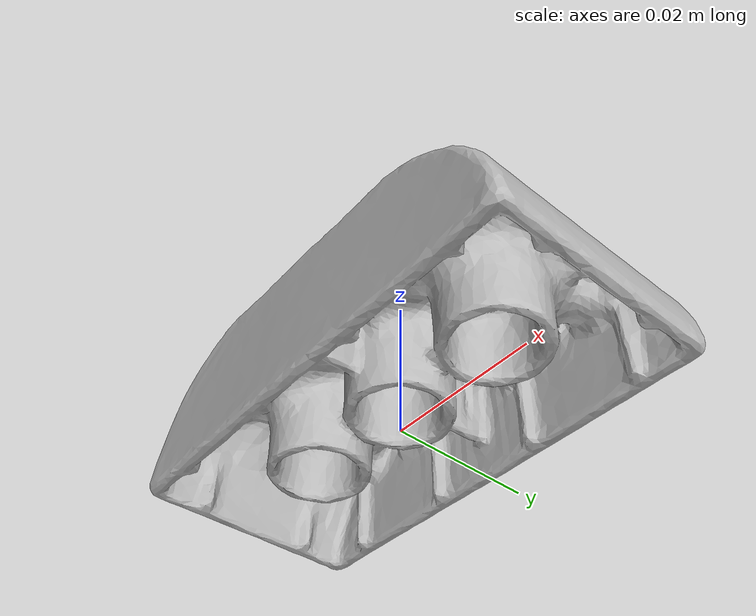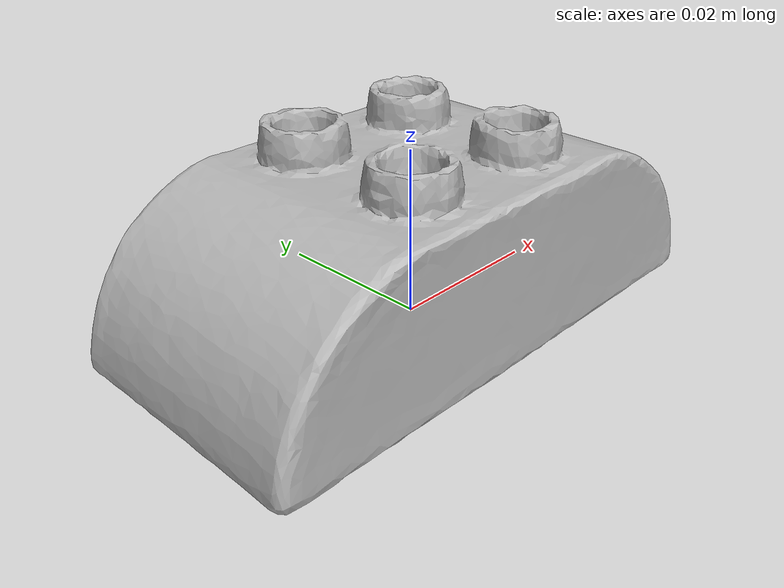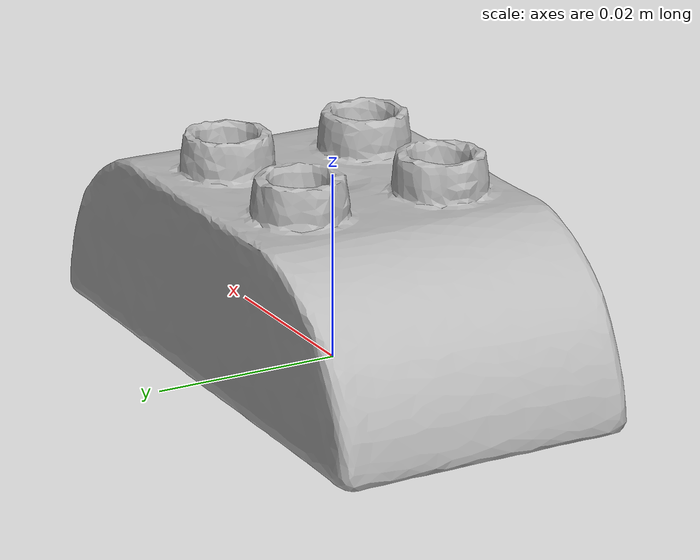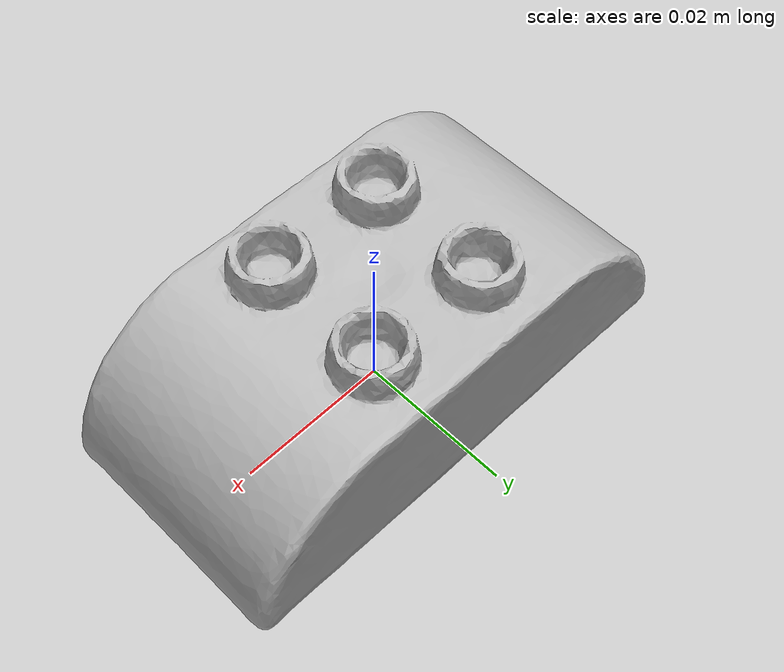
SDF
<?xml version="1.0" ?>
<sdf version='1.8'>
  <model name='ycb_073-a_lego_duplo'>
    <link name='body'>
      <inertial>
        <mass>0.0244584560931</mass>
        <pose>0.000159323913 5.11674661e-05 0.0124206865 0 0 0</pose>
        <inertia>
          <ixx>3.07068291546e-06</ixx>
          <ixy>2.87504624992e-08</ixy>
          <ixz>1.5867275428e-08</ixz>
          <iyy>6.85242992535e-06</iyy>
          <iyz>7.33157476295e-09</iyz>
          <izz>8.59817371319e-06</izz>
        </inertia>
      </inertial>
      <visual name='ycb_073-a_lego_duplo_visual'>
        <pose>0.016598 0.009587 0.000274 0 0 0</pose>
        <geometry>
          <mesh>
            <uri>model://ycb_073-a_lego_duplo/meshes/textured.dae</uri>
          </mesh>
        </geometry>
      </visual>
      <collision name='ycb_073-a_lego_duplo_collision'>
        <pose>0.016598 0.009587 0.000274 0 0 0</pose>
        <geometry>
          <mesh>
            <uri>model://ycb_073-a_lego_duplo/meshes/nontextured.stl</uri>
          </mesh>
        </geometry>
        <max_contacts>10</max_contacts>
        <surface>
          <contact>
            <ode>
              <kp>1e15</kp>
              <kd>1e13</kd>
            </ode>
          </contact>
        </surface>
      </collision>
    </link>
  </model>
</sdf>
